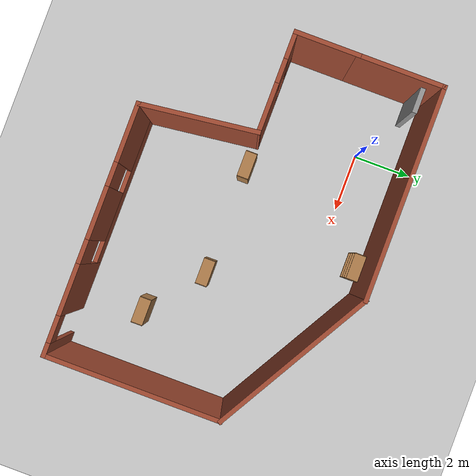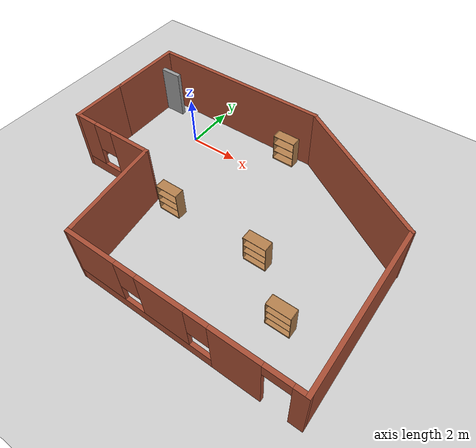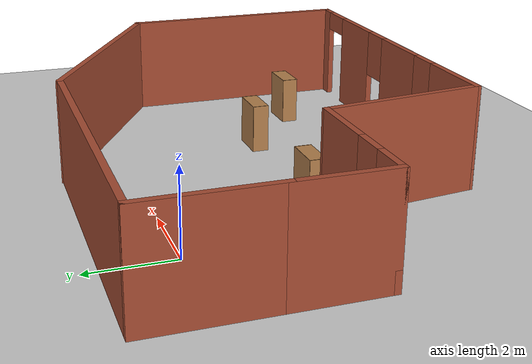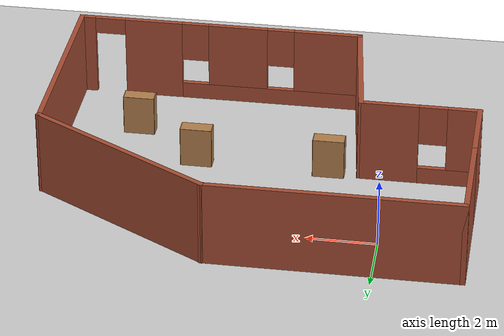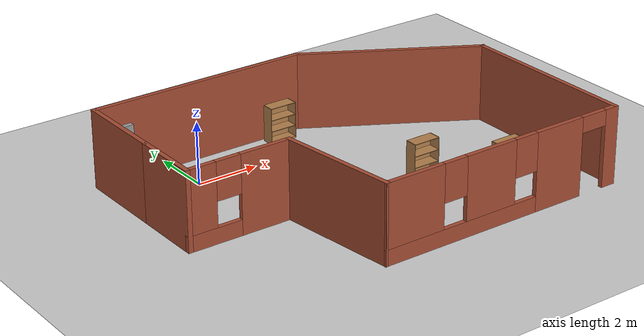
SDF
<sdf version="1.7">
 <world name="default">
  <light name="sun" type="directional">
   <pose>0 0 10 0 -0 0</pose>
   <diffuse>0.8 0.8 0.8 1</diffuse>
   <specular>0.2 0.2 0.2 1</specular>
   <attenuation>
    <range>1000</range>
    <constant>0.9</constant>
    <linear>0.01</linear>
    <quadratic>0.001</quadratic>
   </attenuation>
   <direction>-0.5 0.1 -0.9</direction>
   <spot><inner_angle>0</inner_angle><outer_angle>0</outer_angle><falloff>0</falloff></spot>
  </light>
  <model name="ground_plane">
   <static>1</static>
   <link name="link">
    <collision name="collision">
     <geometry><plane><normal>0 0 1</normal><size>100 100</size></plane></geometry>
     <surface><friction><ode><mu>100</mu><mu2>50</mu2></ode></friction></surface>
    </collision>
    <visual name="visual">
     <cast_shadows>0</cast_shadows>
     <geometry><plane><normal>0 0 1</normal><size>100 100</size></plane></geometry>
     <material>
      <script><uri>file://media/materials/scripts/gazebo.material</uri><name>Gazebo/Grey</name></script>
     </material>
    </visual>
   </link>
  </model>
  <gravity>0 0 -9.8</gravity>
  <magnetic_field>6e-06 2.3e-05 -4.2e-05</magnetic_field>
  <atmosphere type="adiabatic"/>
  <physics type="ode">
   <max_step_size>0.001</max_step_size>
   <real_time_factor>1</real_time_factor>
   <real_time_update_rate>1000</real_time_update_rate>
  </physics>
  <scene><ambient>0.4 0.4 0.4 1</ambient><background>0.7 0.7 0.7 1</background><shadows>1</shadows></scene>
  <audio><device>default</device></audio>
  <spherical_coordinates>
   <surface_model>EARTH_WGS84</surface_model>
   <latitude_deg>0</latitude_deg>
   <longitude_deg>0</longitude_deg>
   <elevation>0</elevation>
   <heading_deg>0</heading_deg>
  </spherical_coordinates>
  <model name="test">
   <pose>3.63685 -2.81804 0 0 -0 0</pose>
   <link name="Door_0">
    <collision name="Door_0_Collision">
     <geometry><box><size>0.9 0.17 2</size></box></geometry>
     <pose>0 0 1 0 -0 0</pose>
    </collision>
    <visual name="Door_0_Visual">
     <pose>0 0 1 0 -0 0</pose>
     <geometry><box><size>0.9 0.17 2</size></box></geometry>
     <material>
      <script><uri>file://media/materials/scripts/gazebo.material</uri><name>Gazebo/Grey</name></script>
     </material>
    </visual>
    <pose>-5.62598 3.86289 0 0 -0 0</pose>
   </link>
   <link name="Wall_0">
    <pose>-4.42185 -0.571964 0 0 -0 3.14159</pose>
    <visual name="Wall_0_Visual_0">
     <pose>-0.885906 0 1.25 0 -0 0</pose>
     <geometry><box><size>1.72819 0.15 2.5</size></box></geometry>
     <material>
      <script><uri>file://media/materials/scripts/gazebo.material</uri><name>Gazebo/Bricks</name></script>
      <ambient>1 1 1 1</ambient>
     </material>
     <meta><layer>0</layer></meta>
    </visual>
    <collision name="Wall_0_Collision_0">
     <geometry><box><size>1.72819 0.15 2.5</size></box></geometry>
     <pose>-0.885906 0 1.25 0 -0 0</pose>
    </collision>
    <visual name="Wall_0_Visual_1">
     <pose>0.864094 0 0.25 0 -0 0</pose>
     <geometry><box><size>1.77181 0.15 0.5</size></box></geometry>
     <material>
      <script><uri>file://media/materials/scripts/gazebo.material</uri><name>Gazebo/Bricks</name></script>
      <ambient>1 1 1 1</ambient>
     </material>
     <meta><layer>0</layer></meta>
    </visual>
    <collision name="Wall_0_Collision_1">
     <geometry><box><size>1.77181 0.15 0.5</size></box></geometry>
     <pose>0.864094 0 0.25 0 -0 0</pose>
    </collision>
    <visual name="Wall_0_Visual_2">
     <pose>1.26409 0 1.5 0 -0 0</pose>
     <geometry><box><size>0.971812 0.15 2</size></box></geometry>
     <material>
      <script><uri>file://media/materials/scripts/gazebo.material</uri><name>Gazebo/Bricks</name></script>
      <ambient>1 1 1 1</ambient>
     </material>
     <meta><layer>0</layer></meta>
    </visual>
    <collision name="Wall_0_Collision_2">
     <geometry><box><size>0.971812 0.15 2</size></box></geometry>
     <pose>1.26409 0 1.5 0 -0 0</pose>
    </collision>
    <visual name="Wall_0_Visual_3">
     <pose>0.378188 0 1.9 0 -0 0</pose>
     <geometry><box><size>0.8 0.15 1.2</size></box></geometry>
     <material>
      <script><uri>file://media/materials/scripts/gazebo.material</uri><name>Gazebo/Bricks</name></script>
      <ambient>1 1 1 1</ambient>
     </material>
     <meta><layer>0</layer></meta>
    </visual>
    <collision name="Wall_0_Collision_3">
     <geometry><box><size>0.8 0.15 1.2</size></box></geometry>
     <pose>0.378188 0 1.9 0 -0 0</pose>
    </collision>
   </link>
   <link name="Wall_1">
    <collision name="Wall_1_Collision">
     <geometry><box><size>2.25 0.15 2.5</size></box></geometry>
     <pose>0 0 1.25 0 -0 0</pose>
    </collision>
    <visual name="Wall_1_Visual">
     <pose>0 0 1.25 0 -0 0</pose>
     <geometry><box><size>2.25 0.15 2.5</size></box></geometry>
     <material>
      <script><uri>file://media/materials/scripts/gazebo.material</uri><name>Gazebo/Bricks</name></script>
      <ambient>1 1 1 1</ambient>
     </material>
     <meta><layer>0</layer></meta>
    </visual>
    <pose>-6.09685 0.478036 0 0 -0 1.5708</pose>
   </link>
   <link name="Wall_2">
    <collision name="Wall_2_Collision">
     <geometry><box><size>3 0.15 2.5</size></box></geometry>
     <pose>0 0 1.25 0 -0 0</pose>
    </collision>
    <visual name="Wall_2_Visual">
     <pose>0 0 1.25 0 -0 0</pose>
     <geometry><box><size>3 0.15 2.5</size></box></geometry>
     <material>
      <script><uri>file://media/materials/scripts/gazebo.material</uri><name>Gazebo/Bricks</name></script>
      <ambient>1 1 1 1</ambient>
     </material>
     <meta><layer>0</layer></meta>
    </visual>
    <pose>-6.09685 2.95304 0 0 -0 1.5708</pose>
   </link>
   <link name="Wall_3">
    <collision name="Wall_3_Collision">
     <geometry><box><size>7.25 0.15 2.5</size></box></geometry>
     <pose>0 0 1.25 0 -0 0</pose>
    </collision>
    <visual name="Wall_3_Visual">
     <pose>0 0 1.25 0 -0 0</pose>
     <geometry><box><size>7.25 0.15 2.5</size></box></geometry>
     <material>
      <script><uri>file://media/materials/scripts/gazebo.material</uri><name>Gazebo/Bricks</name></script>
      <ambient>1 1 1 1</ambient>
     </material>
     <meta><layer>0</layer></meta>
    </visual>
    <pose>-2.54685 4.37804 0 0 -0 0</pose>
   </link>
   <link name="Wall_4">
    <collision name="Wall_4_Collision">
     <geometry><box><size>6 0.15 2.5</size></box></geometry>
     <pose>0 0 1.25 0 -0 0</pose>
    </collision>
    <visual name="Wall_4_Visual">
     <pose>0 0 1.25 0 -0 0</pose>
     <geometry><box><size>6 0.15 2.5</size></box></geometry>
     <material>
      <script><uri>file://media/materials/scripts/gazebo.material</uri><name>Gazebo/Bricks</name></script>
      <ambient>1 1 1 1</ambient>
     </material>
     <meta><layer>0</layer></meta>
    </visual>
    <pose>3.53627 2.91554 0 0 -0 -0.523599</pose>
   </link>
   <link name="Wall_5">
    <collision name="Wall_5_Collision">
     <geometry><box><size>6 0.15 2.5</size></box></geometry>
     <pose>0 0 1.25 0 -0 0</pose>
    </collision>
    <visual name="Wall_5_Visual">
     <pose>0 0 1.25 0 -0 0</pose>
     <geometry><box><size>6 0.15 2.5</size></box></geometry>
     <material>
      <script><uri>file://media/materials/scripts/gazebo.material</uri><name>Gazebo/Bricks</name></script>
      <ambient>1 1 1 1</ambient>
     </material>
     <meta><layer>0</layer></meta>
    </visual>
    <pose>6.0694 -1.47196 0 0 -0 -1.5708</pose>
   </link>
   <link name="Wall_6">
    <pose>1.8944 -4.39696 0 0 -0 3.14159</pose>
    <visual name="Wall_6_Visual_0">
     <pose>-4.00428 0 1.25 0 -0 0</pose>
     <geometry><box><size>0.491432 0.15 2.5</size></box></geometry>
     <material>
      <script><uri>file://media/materials/scripts/gazebo.material</uri><name>Gazebo/Bricks</name></script>
      <ambient>1 1 1 1</ambient>
     </material>
     <meta><layer>0</layer></meta>
    </visual>
    <collision name="Wall_6_Collision_0">
     <geometry><box><size>0.491432 0.15 2.5</size></box></geometry>
     <pose>-4.00428 0 1.25 0 -0 0</pose>
    </collision>
    <visual name="Wall_6_Visual_1">
     <pose>-1.99878 0 1.25 0 -0 0</pose>
     <geometry><box><size>1.71958 0.15 2.5</size></box></geometry>
     <material>
      <script><uri>file://media/materials/scripts/gazebo.material</uri><name>Gazebo/Bricks</name></script>
      <ambient>1 1 1 1</ambient>
     </material>
     <meta><layer>0</layer></meta>
    </visual>
    <collision name="Wall_6_Collision_1">
     <geometry><box><size>1.71958 0.15 2.5</size></box></geometry>
     <pose>-1.99878 0 1.25 0 -0 0</pose>
    </collision>
    <visual name="Wall_6_Visual_2">
     <pose>1.55551 0 0.25 0 -0 0</pose>
     <geometry><box><size>5.38899 0.15 0.5</size></box></geometry>
     <material>
      <script><uri>file://media/materials/scripts/gazebo.material</uri><name>Gazebo/Bricks</name></script>
      <ambient>1 1 1 1</ambient>
     </material>
     <meta><layer>0</layer></meta>
    </visual>
    <collision name="Wall_6_Collision_2">
     <geometry><box><size>5.38899 0.15 0.5</size></box></geometry>
     <pose>1.55551 0 0.25 0 -0 0</pose>
    </collision>
    <visual name="Wall_6_Visual_3">
     <pose>0.545801 0 1.5 0 -0 0</pose>
     <geometry><box><size>1.76958 0.15 2</size></box></geometry>
     <material>
      <script><uri>file://media/materials/scripts/gazebo.material</uri><name>Gazebo/Bricks</name></script>
      <ambient>1 1 1 1</ambient>
     </material>
     <meta><layer>0</layer></meta>
    </visual>
    <collision name="Wall_6_Collision_3">
     <geometry><box><size>1.76958 0.15 2</size></box></geometry>
     <pose>0.545801 0 1.5 0 -0 0</pose>
    </collision>
    <visual name="Wall_6_Visual_4">
     <pose>3.2403 0 1.5 0 -0 0</pose>
     <geometry><box><size>2.01941 0.15 2</size></box></geometry>
     <material>
      <script><uri>file://media/materials/scripts/gazebo.material</uri><name>Gazebo/Bricks</name></script>
      <ambient>1 1 1 1</ambient>
     </material>
     <meta><layer>0</layer></meta>
    </visual>
    <collision name="Wall_6_Collision_4">
     <geometry><box><size>2.01941 0.15 2</size></box></geometry>
     <pose>3.2403 0 1.5 0 -0 0</pose>
    </collision>
    <visual name="Wall_6_Visual_5">
     <pose>-0.738988 0 1.9 0 -0 0</pose>
     <geometry><box><size>0.8 0.15 1.2</size></box></geometry>
     <material>
      <script><uri>file://media/materials/scripts/gazebo.material</uri><name>Gazebo/Bricks</name></script>
      <ambient>1 1 1 1</ambient>
     </material>
     <meta><layer>0</layer></meta>
    </visual>
    <collision name="Wall_6_Collision_5">
     <geometry><box><size>0.8 0.15 1.2</size></box></geometry>
     <pose>-0.738988 0 1.9 0 -0 0</pose>
    </collision>
    <visual name="Wall_6_Visual_6">
     <pose>1.83059 0 1.9 0 -0 0</pose>
     <geometry><box><size>0.8 0.15 1.2</size></box></geometry>
     <material>
      <script><uri>file://media/materials/scripts/gazebo.material</uri><name>Gazebo/Bricks</name></script>
      <ambient>1 1 1 1</ambient>
     </material>
     <meta><layer>0</layer></meta>
    </visual>
    <collision name="Wall_6_Collision_6">
     <geometry><box><size>0.8 0.15 1.2</size></box></geometry>
     <pose>1.83059 0 1.9 0 -0 0</pose>
    </collision>
    <visual name="Wall_6_Visual_7">
     <pose>-3.30857 0 2.25 0 -0 0</pose>
     <geometry><box><size>0.9 0.15 0.5</size></box></geometry>
     <material>
      <script><uri>file://media/materials/scripts/gazebo.material</uri><name>Gazebo/Bricks</name></script>
      <ambient>1 1 1 1</ambient>
     </material>
     <meta><layer>0</layer></meta>
    </visual>
    <collision name="Wall_6_Collision_7">
     <geometry><box><size>0.9 0.15 0.5</size></box></geometry>
     <pose>-3.30857 0 2.25 0 -0 0</pose>
    </collision>
   </link>
   <link name="Wall_7">
    <collision name="Wall_7_Collision">
     <geometry><box><size>4.00331 0.15 2.5</size></box></geometry>
     <pose>0 0 1.25 0 -0 0</pose>
    </collision>
    <visual name="Wall_7_Visual">
     <pose>0 0 1.25 0 -0 0</pose>
     <geometry><box><size>4.00331 0.15 2.5</size></box></geometry>
     <material>
      <script><uri>file://media/materials/scripts/gazebo.material</uri><name>Gazebo/Bricks</name></script>
      <ambient>1 1 1 1</ambient>
     </material>
     <meta><layer>0</layer></meta>
    </visual>
    <pose>-2.51373 -2.48446 0 0 -0 1.69209</pose>
   </link>
   <static>1</static>
  </model>
  <model name="bookshelf">
   <static>1</static>
   <link name="link">
    <inertial><mass>1</mass></inertial>
    <collision name="back">
     <pose>0 0.005 0.6 0 -0 0</pose>
     <geometry><box><size>0.9 0.01 1.2</size></box></geometry>
    </collision>
    <visual name="visual1">
     <pose>0 0.005 0.6 0 -0 0</pose>
     <geometry><box><size>0.9 0.01 1.2</size></box></geometry>
     <material>
      <script><uri>file://media/materials/scripts/gazebo.material</uri><name>Gazebo/Wood</name></script>
     </material>
    </visual>
    <collision name="left_side">
     <pose>0.45 -0.195 0.6 0 -0 0</pose>
     <geometry><box><size>0.02 0.4 1.2</size></box></geometry>
    </collision>
    <visual name="visual2">
     <pose>0.45 -0.195 0.6 0 -0 0</pose>
     <geometry><box><size>0.02 0.4 1.2</size></box></geometry>
     <material>
      <script><uri>file://media/materials/scripts/gazebo.material</uri><name>Gazebo/Wood</name></script>
     </material>
    </visual>
    <collision name="right_side">
     <pose>-0.45 -0.195 0.6 0 -0 0</pose>
     <geometry><box><size>0.02 0.4 1.2</size></box></geometry>
    </collision>
    <visual name="visual3">
     <pose>-0.45 -0.195 0.6 0 -0 0</pose>
     <geometry><box><size>0.02 0.4 1.2</size></box></geometry>
     <material>
      <script><uri>file://media/materials/scripts/gazebo.material</uri><name>Gazebo/Wood</name></script>
     </material>
    </visual>
    <collision name="bottom">
     <pose>0 -0.195 0.03 0 -0 0</pose>
     <geometry><box><size>0.88 0.4 0.06</size></box></geometry>
    </collision>
    <visual name="visual4">
     <pose>0 -0.195 0.03 0 -0 0</pose>
     <geometry><box><size>0.88 0.4 0.06</size></box></geometry>
     <material>
      <script><uri>file://media/materials/scripts/gazebo.material</uri><name>Gazebo/Wood</name></script>
     </material>
    </visual>
    <collision name="top">
     <pose>0 -0.195 1.19 0 -0 0</pose>
     <geometry><box><size>0.88 0.4 0.02</size></box></geometry>
    </collision>
    <visual name="visual5">
     <pose>0 -0.195 1.19 0 -0 0</pose>
     <geometry><box><size>0.88 0.4 0.02</size></box></geometry>
     <material>
      <script><uri>file://media/materials/scripts/gazebo.material</uri><name>Gazebo/Wood</name></script>
     </material>
    </visual>
    <collision name="low_shelf">
     <pose>0 -0.195 0.43 0 -0 0</pose>
     <geometry><box><size>0.88 0.4 0.02</size></box></geometry>
    </collision>
    <visual name="visual6">
     <pose>0 -0.195 0.43 0 -0 0</pose>
     <geometry><box><size>0.88 0.4 0.02</size></box></geometry>
     <material>
      <script><uri>file://media/materials/scripts/gazebo.material</uri><name>Gazebo/Wood</name></script>
     </material>
    </visual>
    <collision name="high_shelf">
     <pose>0 -0.195 0.8 0 -0 0</pose>
     <geometry><box><size>0.88 0.4 0.02</size></box></geometry>
    </collision>
    <visual name="visual7">
     <pose>0 -0.195 0.8 0 -0 0</pose>
     <geometry><box><size>0.88 0.4 0.02</size></box></geometry>
     <material>
      <script><uri>file://media/materials/scripts/gazebo.material</uri><name>Gazebo/Wood</name></script>
     </material>
    </visual>
   </link>
   <pose>3.71809 1.36802 0 0 -0 0</pose>
  </model>
  <model name="bookshelf_0">
   <static>1</static>
   <link name="link">
    <inertial><mass>1</mass></inertial>
    <collision name="back">
     <pose>0 0.005 0.6 0 -0 0</pose>
     <geometry><box><size>0.9 0.01 1.2</size></box></geometry>
    </collision>
    <visual name="visual1">
     <pose>0 0.005 0.6 0 -0 0</pose>
     <geometry><box><size>0.9 0.01 1.2</size></box></geometry>
     <material>
      <script><uri>file://media/materials/scripts/gazebo.material</uri><name>Gazebo/Wood</name></script>
     </material>
    </visual>
    <collision name="left_side">
     <pose>0.45 -0.195 0.6 0 -0 0</pose>
     <geometry><box><size>0.02 0.4 1.2</size></box></geometry>
    </collision>
    <visual name="visual2">
     <pose>0.45 -0.195 0.6 0 -0 0</pose>
     <geometry><box><size>0.02 0.4 1.2</size></box></geometry>
     <material>
      <script><uri>file://media/materials/scripts/gazebo.material</uri><name>Gazebo/Wood</name></script>
     </material>
    </visual>
    <collision name="right_side">
     <pose>-0.45 -0.195 0.6 0 -0 0</pose>
     <geometry><box><size>0.02 0.4 1.2</size></box></geometry>
    </collision>
    <visual name="visual3">
     <pose>-0.45 -0.195 0.6 0 -0 0</pose>
     <geometry><box><size>0.02 0.4 1.2</size></box></geometry>
     <material>
      <script><uri>file://media/materials/scripts/gazebo.material</uri><name>Gazebo/Wood</name></script>
     </material>
    </visual>
    <collision name="bottom">
     <pose>0 -0.195 0.03 0 -0 0</pose>
     <geometry><box><size>0.88 0.4 0.06</size></box></geometry>
    </collision>
    <visual name="visual4">
     <pose>0 -0.195 0.03 0 -0 0</pose>
     <geometry><box><size>0.88 0.4 0.06</size></box></geometry>
     <material>
      <script><uri>file://media/materials/scripts/gazebo.material</uri><name>Gazebo/Wood</name></script>
     </material>
    </visual>
    <collision name="top">
     <pose>0 -0.195 1.19 0 -0 0</pose>
     <geometry><box><size>0.88 0.4 0.02</size></box></geometry>
    </collision>
    <visual name="visual5">
     <pose>0 -0.195 1.19 0 -0 0</pose>
     <geometry><box><size>0.88 0.4 0.02</size></box></geometry>
     <material>
      <script><uri>file://media/materials/scripts/gazebo.material</uri><name>Gazebo/Wood</name></script>
     </material>
    </visual>
    <collision name="low_shelf">
     <pose>0 -0.195 0.43 0 -0 0</pose>
     <geometry><box><size>0.88 0.4 0.02</size></box></geometry>
    </collision>
    <visual name="visual6">
     <pose>0 -0.195 0.43 0 -0 0</pose>
     <geometry><box><size>0.88 0.4 0.02</size></box></geometry>
     <material>
      <script><uri>file://media/materials/scripts/gazebo.material</uri><name>Gazebo/Wood</name></script>
     </material>
    </visual>
    <collision name="high_shelf">
     <pose>0 -0.195 0.8 0 -0 0</pose>
     <geometry><box><size>0.88 0.4 0.02</size></box></geometry>
    </collision>
    <visual name="visual7">
     <pose>0 -0.195 0.8 0 -0 0</pose>
     <geometry><box><size>0.88 0.4 0.02</size></box></geometry>
     <material>
      <script><uri>file://media/materials/scripts/gazebo.material</uri><name>Gazebo/Wood</name></script>
     </material>
    </visual>
   </link>
   <pose>1.77663 -3.23674 0 0 -0 0</pose>
  </model>
  <model name="bookshelf_1">
   <static>1</static>
   <link name="link">
    <inertial><mass>1</mass></inertial>
    <collision name="back">
     <pose>0 0.005 0.6 0 -0 0</pose>
     <geometry><box><size>0.9 0.01 1.2</size></box></geometry>
    </collision>
    <visual name="visual1">
     <pose>0 0.005 0.6 0 -0 0</pose>
     <geometry><box><size>0.9 0.01 1.2</size></box></geometry>
     <material>
      <script><uri>file://media/materials/scripts/gazebo.material</uri><name>Gazebo/Wood</name></script>
     </material>
    </visual>
    <collision name="left_side">
     <pose>0.45 -0.195 0.6 0 -0 0</pose>
     <geometry><box><size>0.02 0.4 1.2</size></box></geometry>
    </collision>
    <visual name="visual2">
     <pose>0.45 -0.195 0.6 0 -0 0</pose>
     <geometry><box><size>0.02 0.4 1.2</size></box></geometry>
     <material>
      <script><uri>file://media/materials/scripts/gazebo.material</uri><name>Gazebo/Wood</name></script>
     </material>
    </visual>
    <collision name="right_side">
     <pose>-0.45 -0.195 0.6 0 -0 0</pose>
     <geometry><box><size>0.02 0.4 1.2</size></box></geometry>
    </collision>
    <visual name="visual3">
     <pose>-0.45 -0.195 0.6 0 -0 0</pose>
     <geometry><box><size>0.02 0.4 1.2</size></box></geometry>
     <material>
      <script><uri>file://media/materials/scripts/gazebo.material</uri><name>Gazebo/Wood</name></script>
     </material>
    </visual>
    <collision name="bottom">
     <pose>0 -0.195 0.03 0 -0 0</pose>
     <geometry><box><size>0.88 0.4 0.06</size></box></geometry>
    </collision>
    <visual name="visual4">
     <pose>0 -0.195 0.03 0 -0 0</pose>
     <geometry><box><size>0.88 0.4 0.06</size></box></geometry>
     <material>
      <script><uri>file://media/materials/scripts/gazebo.material</uri><name>Gazebo/Wood</name></script>
     </material>
    </visual>
    <collision name="top">
     <pose>0 -0.195 1.19 0 -0 0</pose>
     <geometry><box><size>0.88 0.4 0.02</size></box></geometry>
    </collision>
    <visual name="visual5">
     <pose>0 -0.195 1.19 0 -0 0</pose>
     <geometry><box><size>0.88 0.4 0.02</size></box></geometry>
     <material>
      <script><uri>file://media/materials/scripts/gazebo.material</uri><name>Gazebo/Wood</name></script>
     </material>
    </visual>
    <collision name="low_shelf">
     <pose>0 -0.195 0.43 0 -0 0</pose>
     <geometry><box><size>0.88 0.4 0.02</size></box></geometry>
    </collision>
    <visual name="visual6">
     <pose>0 -0.195 0.43 0 -0 0</pose>
     <geometry><box><size>0.88 0.4 0.02</size></box></geometry>
     <material>
      <script><uri>file://media/materials/scripts/gazebo.material</uri><name>Gazebo/Wood</name></script>
     </material>
    </visual>
    <collision name="high_shelf">
     <pose>0 -0.195 0.8 0 -0 0</pose>
     <geometry><box><size>0.88 0.4 0.02</size></box></geometry>
    </collision>
    <visual name="visual7">
     <pose>0 -0.195 0.8 0 -0 0</pose>
     <geometry><box><size>0.88 0.4 0.02</size></box></geometry>
     <material>
      <script><uri>file://media/materials/scripts/gazebo.material</uri><name>Gazebo/Wood</name></script>
     </material>
    </visual>
   </link>
   <pose>5.61816 -3.29043 0 0 -0 0</pose>
  </model>
  <model name="bookshelf_2">
   <static>1</static>
   <link name="link">
    <inertial><mass>1</mass></inertial>
    <collision name="back">
     <pose>0 0.005 0.6 0 -0 0</pose>
     <geometry><box><size>0.9 0.01 1.2</size></box></geometry>
    </collision>
    <visual name="visual1">
     <pose>0 0.005 0.6 0 -0 0</pose>
     <geometry><box><size>0.9 0.01 1.2</size></box></geometry>
     <material>
      <script><uri>file://media/materials/scripts/gazebo.material</uri><name>Gazebo/Wood</name></script>
     </material>
    </visual>
    <collision name="left_side">
     <pose>0.45 -0.195 0.6 0 -0 0</pose>
     <geometry><box><size>0.02 0.4 1.2</size></box></geometry>
    </collision>
    <visual name="visual2">
     <pose>0.45 -0.195 0.6 0 -0 0</pose>
     <geometry><box><size>0.02 0.4 1.2</size></box></geometry>
     <material>
      <script><uri>file://media/materials/scripts/gazebo.material</uri><name>Gazebo/Wood</name></script>
     </material>
    </visual>
    <collision name="right_side">
     <pose>-0.45 -0.195 0.6 0 -0 0</pose>
     <geometry><box><size>0.02 0.4 1.2</size></box></geometry>
    </collision>
    <visual name="visual3">
     <pose>-0.45 -0.195 0.6 0 -0 0</pose>
     <geometry><box><size>0.02 0.4 1.2</size></box></geometry>
     <material>
      <script><uri>file://media/materials/scripts/gazebo.material</uri><name>Gazebo/Wood</name></script>
     </material>
    </visual>
    <collision name="bottom">
     <pose>0 -0.195 0.03 0 -0 0</pose>
     <geometry><box><size>0.88 0.4 0.06</size></box></geometry>
    </collision>
    <visual name="visual4">
     <pose>0 -0.195 0.03 0 -0 0</pose>
     <geometry><box><size>0.88 0.4 0.06</size></box></geometry>
     <material>
      <script><uri>file://media/materials/scripts/gazebo.material</uri><name>Gazebo/Wood</name></script>
     </material>
    </visual>
    <collision name="top">
     <pose>0 -0.195 1.19 0 -0 0</pose>
     <geometry><box><size>0.88 0.4 0.02</size></box></geometry>
    </collision>
    <visual name="visual5">
     <pose>0 -0.195 1.19 0 -0 0</pose>
     <geometry><box><size>0.88 0.4 0.02</size></box></geometry>
     <material>
      <script><uri>file://media/materials/scripts/gazebo.material</uri><name>Gazebo/Wood</name></script>
     </material>
    </visual>
    <collision name="low_shelf">
     <pose>0 -0.195 0.43 0 -0 0</pose>
     <geometry><box><size>0.88 0.4 0.02</size></box></geometry>
    </collision>
    <visual name="visual6">
     <pose>0 -0.195 0.43 0 -0 0</pose>
     <geometry><box><size>0.88 0.4 0.02</size></box></geometry>
     <material>
      <script><uri>file://media/materials/scripts/gazebo.material</uri><name>Gazebo/Wood</name></script>
     </material>
    </visual>
    <collision name="high_shelf">
     <pose>0 -0.195 0.8 0 -0 0</pose>
     <geometry><box><size>0.88 0.4 0.02</size></box></geometry>
    </collision>
    <visual name="visual7">
     <pose>0 -0.195 0.8 0 -0 0</pose>
     <geometry><box><size>0.88 0.4 0.02</size></box></geometry>
     <material>
      <script><uri>file://media/materials/scripts/gazebo.material</uri><name>Gazebo/Wood</name></script>
     </material>
    </visual>
   </link>
   <pose>7.57537 -4.84227 0 0 -0 0</pose>
  </model>
 </world>
</sdf>
